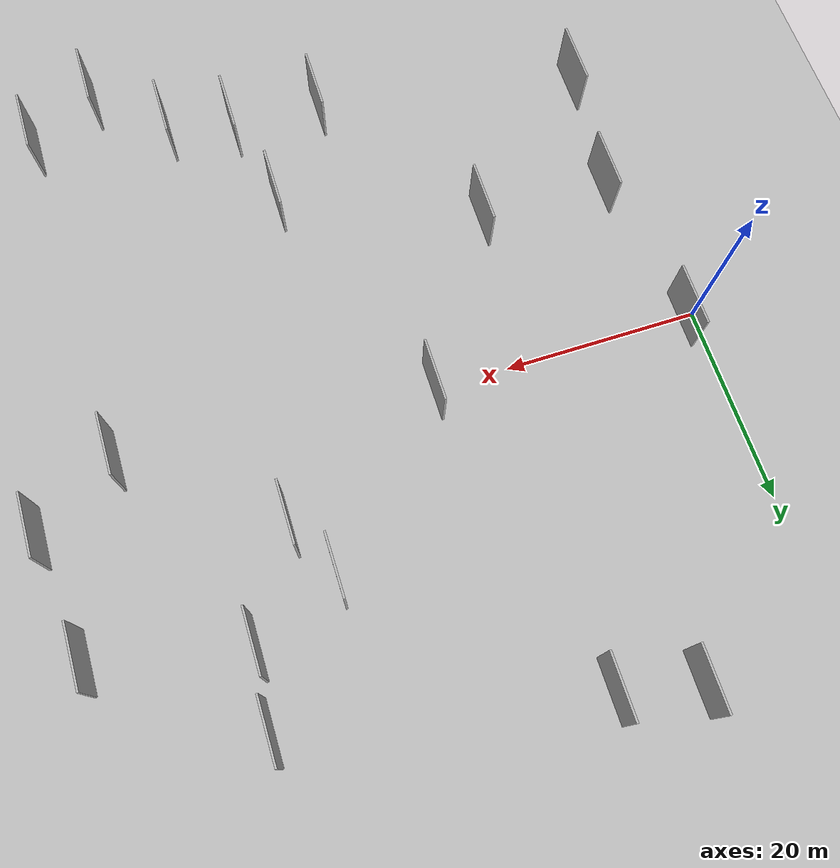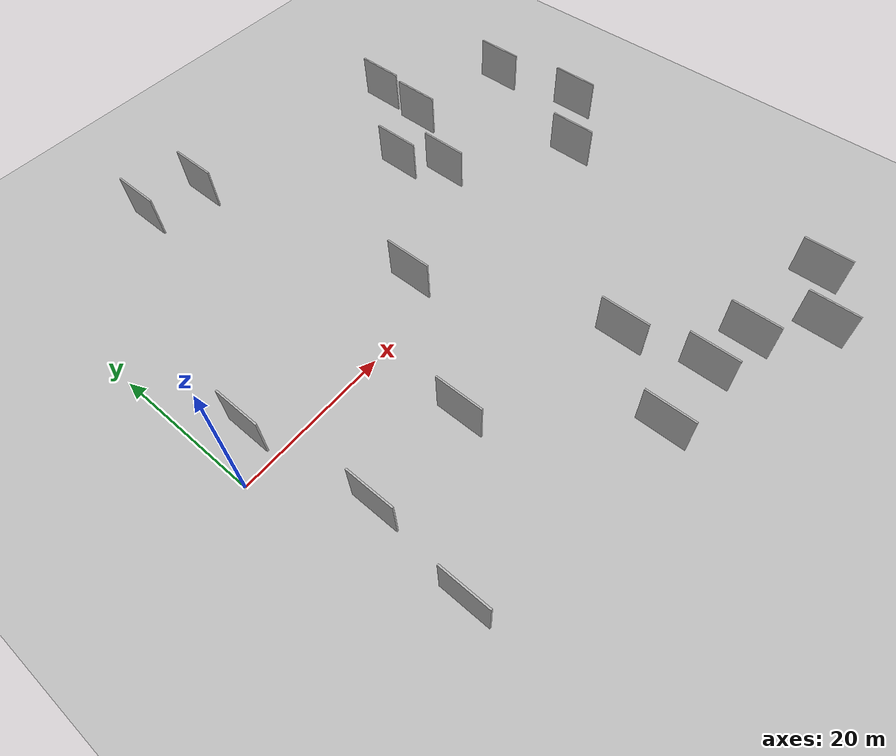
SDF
<?xml version="1.0" encoding="utf-8"?>

<sdf version="1.6">

   <world name="default">

      <gui fullscreen="0">

         <camera name="user_camera">

            <pose>-15 0 4.57585 0 0 0</pose>

            <view_controller>orbit</view_controller>

         </camera>

      </gui>

      <scene>

         <sky>

           <clouds>

             <speed>12</speed>

           </clouds>

         </sky>

         <ambient>0.4 0.4 0.4 1</ambient>

         <background>0.7 0.7 0.7 1</background>

         <shadows>1</shadows>

      </scene>

      <gravity>0 0 -9.8066</gravity>

      <magnetic_field>6e-06 2.3e-05 -4.2e-05</magnetic_field>

      <physics default="0" name="default_physics" type="ode">

         <ode>

            <solver>

               <type>quick</type>

               <iters>10</iters>

               <sor>1.0</sor>

               <use_dynamic_moi_rescaling>0</use_dynamic_moi_rescaling>

            </solver>

            <constraints>

               <cfm>0</cfm>

               <erp>0.2</erp>

               <contact_max_correcting_vel>100</contact_max_correcting_vel>

               <contact_surface_layer>0.001</contact_surface_layer>

            </constraints>

         </ode>

         <max_step_size>0.004</max_step_size>

         <real_time_factor>1</real_time_factor>

         <real_time_update_rate>250</real_time_update_rate>

      </physics>

      <light name="sun" type="directional">

         <cast_shadows>1</cast_shadows>

         <pose>0 0 10 0 0 0</pose>

         <diffuse>0.8 0.8 0.8 1</diffuse>

         <specular>0.2 0.2 0.2 1</specular>

         <attenuation>

            <range>1000</range>

            <constant>0.9</constant>

            <linear>0.01</linear>

            <quadratic>0.001</quadratic>

         </attenuation>

         <direction>-0.5 0.1 -0.9</direction>

      </light>

      <include>

         <name>ground_plane_1</name>

         <uri>model://HANNAS_ground_plane</uri>

         <pose>0 0 0  0 0 0</pose>

      </include>

      <include>

         <name>ground_plane_2</name>

         <uri>model://HANNAS_ground_plane</uri>

         <pose>100 0 0  0 0 0</pose>

      </include>

      <model name="HANNAS_wall_1">

         <static>1</static>

         <pose frame="">58.3960 -0.5911 5.0 0.000000 0.000000 1.570796</pose>

         <link name="link">

            <pose frame="">0 0 3.00 0 0 0</pose>

            <collision name="collision">

               <geometry>

                  <box>

                     <size>6.00 0.2 6.00</size>

                  </box>

               </geometry>

               <max_contacts>10</max_contacts>

               <surface>

                  <contact>

                     <ode/>

                  </contact>

                  <bounce/>

                  <friction>

                     <torsional>

                        <ode/>

                     </torsional>

                     <ode/>

                  </friction>

               </surface>

            </collision>

            <visual name="visual">

               <cast_shadows>0</cast_shadows>

               <geometry>

                  <box>

                     <size>6.00 0.2 6.00</size>

                  </box>

               </geometry>

               <material>

                  <script>

                     <uri>model://HANNAS_wall/materials/scripts</uri>

                     <uri>model://HANNAS_wall/materials/textures</uri>

                     <name>vrc/HANNAS_wall</name>

                  </script>

               </material>

            </visual>

            <self_collide>0</self_collide>

            <enable_wind>0</enable_wind>

            <kinematic>0</kinematic>

         </link>

      </model>

      <model name="HANNAS_wall_2">

         <static>1</static>

         <pose frame="">37.3410 -21.9034 5.0 0.000000 0.000000 1.570796</pose>

         <link name="link">

            <pose frame="">0 0 3.00 0 0 0</pose>

            <collision name="collision">

               <geometry>

                  <box>

                     <size>6.00 0.2 6.00</size>

                  </box>

               </geometry>

               <max_contacts>10</max_contacts>

               <surface>

                  <contact>

                     <ode/>

                  </contact>

                  <bounce/>

                  <friction>

                     <torsional>

                        <ode/>

                     </torsional>

                     <ode/>

                  </friction>

               </surface>

            </collision>

            <visual name="visual">

               <cast_shadows>0</cast_shadows>

               <geometry>

                  <box>

                     <size>6.00 0.2 6.00</size>

                  </box>

               </geometry>

               <material>

                  <script>

                     <uri>model://HANNAS_wall/materials/scripts</uri>

                     <uri>model://HANNAS_wall/materials/textures</uri>

                     <name>vrc/HANNAS_wall</name>

                  </script>

               </material>

            </visual>

            <self_collide>0</self_collide>

            <enable_wind>0</enable_wind>

            <kinematic>0</kinematic>

         </link>

      </model>

      <model name="HANNAS_wall_3">

         <static>1</static>

         <pose frame="">15.2201 33.7548 5.0 0.000000 0.000000 1.570796</pose>

         <link name="link">

            <pose frame="">0 0 3.00 0 0 0</pose>

            <collision name="collision">

               <geometry>

                  <box>

                     <size>6.00 0.2 6.00</size>

                  </box>

               </geometry>

               <max_contacts>10</max_contacts>

               <surface>

                  <contact>

                     <ode/>

                  </contact>

                  <bounce/>

                  <friction>

                     <torsional>

                        <ode/>

                     </torsional>

                     <ode/>

                  </friction>

               </surface>

            </collision>

            <visual name="visual">

               <cast_shadows>0</cast_shadows>

               <geometry>

                  <box>

                     <size>6.00 0.2 6.00</size>

                  </box>

               </geometry>

               <material>

                  <script>

                     <uri>model://HANNAS_wall/materials/scripts</uri>

                     <uri>model://HANNAS_wall/materials/textures</uri>

                     <name>vrc/HANNAS_wall</name>

                  </script>

               </material>

            </visual>

            <self_collide>0</self_collide>

            <enable_wind>0</enable_wind>

            <kinematic>0</kinematic>

         </link>

      </model>

      <model name="HANNAS_wall_4">

         <static>1</static>

         <pose frame="">66.3346 4.4779 5.0 0.000000 0.000000 1.570796</pose>

         <link name="link">

            <pose frame="">0 0 3.00 0 0 0</pose>

            <collision name="collision">

               <geometry>

                  <box>

                     <size>6.00 0.2 6.00</size>

                  </box>

               </geometry>

               <max_contacts>10</max_contacts>

               <surface>

                  <contact>

                     <ode/>

                  </contact>

                  <bounce/>

                  <friction>

                     <torsional>

                        <ode/>

                     </torsional>

                     <ode/>

                  </friction>

               </surface>

            </collision>

            <visual name="visual">

               <cast_shadows>0</cast_shadows>

               <geometry>

                  <box>

                     <size>6.00 0.2 6.00</size>

                  </box>

               </geometry>

               <material>

                  <script>

                     <uri>model://HANNAS_wall/materials/scripts</uri>

                     <uri>model://HANNAS_wall/materials/textures</uri>

                     <name>vrc/HANNAS_wall</name>

                  </script>

               </material>

            </visual>

            <self_collide>0</self_collide>

            <enable_wind>0</enable_wind>

            <kinematic>0</kinematic>

         </link>

      </model>

      <model name="HANNAS_wall_5">

         <static>1</static>

         <pose frame="">44.8449 10.0553 5.0 0.000000 0.000000 1.570796</pose>

         <link name="link">

            <pose frame="">0 0 3.00 0 0 0</pose>

            <collision name="collision">

               <geometry>

                  <box>

                     <size>6.00 0.2 6.00</size>

                  </box>

               </geometry>

               <max_contacts>10</max_contacts>

               <surface>

                  <contact>

                     <ode/>

                  </contact>

                  <bounce/>

                  <friction>

                     <torsional>

                        <ode/>

                     </torsional>

                     <ode/>

                  </friction>

               </surface>

            </collision>

            <visual name="visual">

               <cast_shadows>0</cast_shadows>

               <geometry>

                  <box>

                     <size>6.00 0.2 6.00</size>

                  </box>

               </geometry>

               <material>

                  <script>

                     <uri>model://HANNAS_wall/materials/scripts</uri>

                     <uri>model://HANNAS_wall/materials/textures</uri>

                     <name>vrc/HANNAS_wall</name>

                  </script>

               </material>

            </visual>

            <self_collide>0</self_collide>

            <enable_wind>0</enable_wind>

            <kinematic>0</kinematic>

         </link>

      </model>

      <model name="HANNAS_wall_6">

         <static>1</static>

         <pose frame="">22.5848 32.0861 5.0 0.000000 0.000000 1.570796</pose>

         <link name="link">

            <pose frame="">0 0 3.00 0 0 0</pose>

            <collision name="collision">

               <geometry>

                  <box>

                     <size>6.00 0.2 6.00</size>

                  </box>

               </geometry>

               <max_contacts>10</max_contacts>

               <surface>

                  <contact>

                     <ode/>

                  </contact>

                  <bounce/>

                  <friction>

                     <torsional>

                        <ode/>

                     </torsional>

                     <ode/>

                  </friction>

               </surface>

            </collision>

            <visual name="visual">

               <cast_shadows>0</cast_shadows>

               <geometry>

                  <box>

                     <size>6.00 0.2 6.00</size>

                  </box>

               </geometry>

               <material>

                  <script>

                     <uri>model://HANNAS_wall/materials/scripts</uri>

                     <uri>model://HANNAS_wall/materials/textures</uri>

                     <name>vrc/HANNAS_wall</name>

                  </script>

               </material>

            </visual>

            <self_collide>0</self_collide>

            <enable_wind>0</enable_wind>

            <kinematic>0</kinematic>

         </link>

      </model>

      <model name="HANNAS_wall_7">

         <static>1</static>

         <pose frame="">4.3440 -26.5365 5.0 0.000000 0.000000 1.570796</pose>

         <link name="link">

            <pose frame="">0 0 3.00 0 0 0</pose>

            <collision name="collision">

               <geometry>

                  <box>

                     <size>6.00 0.2 6.00</size>

                  </box>

               </geometry>

               <max_contacts>10</max_contacts>

               <surface>

                  <contact>

                     <ode/>

                  </contact>

                  <bounce/>

                  <friction>

                     <torsional>

                        <ode/>

                     </torsional>

                     <ode/>

                  </friction>

               </surface>

            </collision>

            <visual name="visual">

               <cast_shadows>0</cast_shadows>

               <geometry>

                  <box>

                     <size>6.00 0.2 6.00</size>

                  </box>

               </geometry>

               <material>

                  <script>

                     <uri>model://HANNAS_wall/materials/scripts</uri>

                     <uri>model://HANNAS_wall/materials/textures</uri>

                     <name>vrc/HANNAS_wall</name>

                  </script>

               </material>

            </visual>

            <self_collide>0</self_collide>

            <enable_wind>0</enable_wind>

            <kinematic>0</kinematic>

         </link>

      </model>

      <model name="HANNAS_wall_8">

         <static>1</static>

         <pose frame="">39.3613 -31.5756 5.0 0.000000 0.000000 1.570796</pose>

         <link name="link">

            <pose frame="">0 0 3.00 0 0 0</pose>

            <collision name="collision">

               <geometry>

                  <box>

                     <size>6.00 0.2 6.00</size>

                  </box>

               </geometry>

               <max_contacts>10</max_contacts>

               <surface>

                  <contact>

                     <ode/>

                  </contact>

                  <bounce/>

                  <friction>

                     <torsional>

                        <ode/>

                     </torsional>

                     <ode/>

                  </friction>

               </surface>

            </collision>

            <visual name="visual">

               <cast_shadows>0</cast_shadows>

               <geometry>

                  <box>

                     <size>6.00 0.2 6.00</size>

                  </box>

               </geometry>

               <material>

                  <script>

                     <uri>model://HANNAS_wall/materials/scripts</uri>

                     <uri>model://HANNAS_wall/materials/textures</uri>

                     <name>vrc/HANNAS_wall</name>

                  </script>

               </material>

            </visual>

            <self_collide>0</self_collide>

            <enable_wind>0</enable_wind>

            <kinematic>0</kinematic>

         </link>

      </model>

      <model name="HANNAS_wall_9">

         <static>1</static>

         <pose frame="">5.6189 -14.1888 5.0 0.000000 0.000000 1.570796</pose>

         <link name="link">

            <pose frame="">0 0 3.00 0 0 0</pose>

            <collision name="collision">

               <geometry>

                  <box>

                     <size>6.00 0.2 6.00</size>

                  </box>

               </geometry>

               <max_contacts>10</max_contacts>

               <surface>

                  <contact>

                     <ode/>

                  </contact>

                  <bounce/>

                  <friction>

                     <torsional>

                        <ode/>

                     </torsional>

                     <ode/>

                  </friction>

               </surface>

            </collision>

            <visual name="visual">

               <cast_shadows>0</cast_shadows>

               <geometry>

                  <box>

                     <size>6.00 0.2 6.00</size>

                  </box>

               </geometry>

               <material>

                  <script>

                     <uri>model://HANNAS_wall/materials/scripts</uri>

                     <uri>model://HANNAS_wall/materials/textures</uri>

                     <name>vrc/HANNAS_wall</name>

                  </script>

               </material>

            </visual>

            <self_collide>0</self_collide>

            <enable_wind>0</enable_wind>

            <kinematic>0</kinematic>

         </link>

      </model>

      <model name="HANNAS_wall_10">

         <static>1</static>

         <pose frame="">64.6992 16.3798 5.0 0.000000 0.000000 1.570796</pose>

         <link name="link">

            <pose frame="">0 0 3.00 0 0 0</pose>

            <collision name="collision">

               <geometry>

                  <box>

                     <size>6.00 0.2 6.00</size>

                  </box>

               </geometry>

               <max_contacts>10</max_contacts>

               <surface>

                  <contact>

                     <ode/>

                  </contact>

                  <bounce/>

                  <friction>

                     <torsional>

                        <ode/>

                     </torsional>

                     <ode/>

                  </friction>

               </surface>

            </collision>

            <visual name="visual">

               <cast_shadows>0</cast_shadows>

               <geometry>

                  <box>

                     <size>6.00 0.2 6.00</size>

                  </box>

               </geometry>

               <material>

                  <script>

                     <uri>model://HANNAS_wall/materials/scripts</uri>

                     <uri>model://HANNAS_wall/materials/textures</uri>

                     <name>vrc/HANNAS_wall</name>

                  </script>

               </material>

            </visual>

            <self_collide>0</self_collide>

            <enable_wind>0</enable_wind>

            <kinematic>0</kinematic>

         </link>

      </model>

      <model name="HANNAS_wall_11">

         <static>1</static>

         <pose frame="">45.7994 -33.0895 5.0 0.000000 0.000000 1.570796</pose>

         <link name="link">

            <pose frame="">0 0 3.00 0 0 0</pose>

            <collision name="collision">

               <geometry>

                  <box>

                     <size>6.00 0.2 6.00</size>

                  </box>

               </geometry>

               <max_contacts>10</max_contacts>

               <surface>

                  <contact>

                     <ode/>

                  </contact>

                  <bounce/>

                  <friction>

                     <torsional>

                        <ode/>

                     </torsional>

                     <ode/>

                  </friction>

               </surface>

            </collision>

            <visual name="visual">

               <cast_shadows>0</cast_shadows>

               <geometry>

                  <box>

                     <size>6.00 0.2 6.00</size>

                  </box>

               </geometry>

               <material>

                  <script>

                     <uri>model://HANNAS_wall/materials/scripts</uri>

                     <uri>model://HANNAS_wall/materials/textures</uri>

                     <name>vrc/HANNAS_wall</name>

                  </script>

               </material>

            </visual>

            <self_collide>0</self_collide>

            <enable_wind>0</enable_wind>

            <kinematic>0</kinematic>

         </link>

      </model>

      <model name="HANNAS_wall_12">

         <static>1</static>

         <pose frame="">18.4371 -14.3033 5.0 0.000000 0.000000 1.570796</pose>

         <link name="link">

            <pose frame="">0 0 3.00 0 0 0</pose>

            <collision name="collision">

               <geometry>

                  <box>

                     <size>6.00 0.2 6.00</size>

                  </box>

               </geometry>

               <max_contacts>10</max_contacts>

               <surface>

                  <contact>

                     <ode/>

                  </contact>

                  <bounce/>

                  <friction>

                     <torsional>

                        <ode/>

                     </torsional>

                     <ode/>

                  </friction>

               </surface>

            </collision>

            <visual name="visual">

               <cast_shadows>0</cast_shadows>

               <geometry>

                  <box>

                     <size>6.00 0.2 6.00</size>

                  </box>

               </geometry>

               <material>

                  <script>

                     <uri>model://HANNAS_wall/materials/scripts</uri>

                     <uri>model://HANNAS_wall/materials/textures</uri>

                     <name>vrc/HANNAS_wall</name>

                  </script>

               </material>

            </visual>

            <self_collide>0</self_collide>

            <enable_wind>0</enable_wind>

            <kinematic>0</kinematic>

         </link>

      </model>

      <model name="HANNAS_wall_13">

         <static>1</static>

         <pose frame="">30.4287 -31.4757 5.0 0.000000 0.000000 1.570796</pose>

         <link name="link">

            <pose frame="">0 0 3.00 0 0 0</pose>

            <collision name="collision">

               <geometry>

                  <box>

                     <size>6.00 0.2 6.00</size>

                  </box>

               </geometry>

               <max_contacts>10</max_contacts>

               <surface>

                  <contact>

                     <ode/>

                  </contact>

                  <bounce/>

                  <friction>

                     <torsional>

                        <ode/>

                     </torsional>

                     <ode/>

                  </friction>

               </surface>

            </collision>

            <visual name="visual">

               <cast_shadows>0</cast_shadows>

               <geometry>

                  <box>

                     <size>6.00 0.2 6.00</size>

                  </box>

               </geometry>

               <material>

                  <script>

                     <uri>model://HANNAS_wall/materials/scripts</uri>

                     <uri>model://HANNAS_wall/materials/textures</uri>

                     <name>vrc/HANNAS_wall</name>

                  </script>

               </material>

            </visual>

            <self_collide>0</self_collide>

            <enable_wind>0</enable_wind>

            <kinematic>0</kinematic>

         </link>

      </model>

      <model name="HANNAS_wall_14">

         <static>1</static>

         <pose frame="">50.9836 26.7225 5.0 0.000000 0.000000 1.570796</pose>

         <link name="link">

            <pose frame="">0 0 3.00 0 0 0</pose>

            <collision name="collision">

               <geometry>

                  <box>

                     <size>6.00 0.2 6.00</size>

                  </box>

               </geometry>

               <max_contacts>10</max_contacts>

               <surface>

                  <contact>

                     <ode/>

                  </contact>

                  <bounce/>

                  <friction>

                     <torsional>

                        <ode/>

                     </torsional>

                     <ode/>

                  </friction>

               </surface>

            </collision>

            <visual name="visual">

               <cast_shadows>0</cast_shadows>

               <geometry>

                  <box>

                     <size>6.00 0.2 6.00</size>

                  </box>

               </geometry>

               <material>

                  <script>

                     <uri>model://HANNAS_wall/materials/scripts</uri>

                     <uri>model://HANNAS_wall/materials/textures</uri>

                     <name>vrc/HANNAS_wall</name>

                  </script>

               </material>

            </visual>

            <self_collide>0</self_collide>

            <enable_wind>0</enable_wind>

            <kinematic>0</kinematic>

         </link>

      </model>

      <model name="HANNAS_wall_15">

         <static>1</static>

         <pose frame="">50.3394 19.5744 5.0 0.000000 0.000000 1.570796</pose>

         <link name="link">

            <pose frame="">0 0 3.00 0 0 0</pose>

            <collision name="collision">

               <geometry>

                  <box>

                     <size>6.00 0.2 6.00</size>

                  </box>

               </geometry>

               <max_contacts>10</max_contacts>

               <surface>

                  <contact>

                     <ode/>

                  </contact>

                  <bounce/>

                  <friction>

                     <torsional>

                        <ode/>

                     </torsional>

                     <ode/>

                  </friction>

               </surface>

            </collision>

            <visual name="visual">

               <cast_shadows>0</cast_shadows>

               <geometry>

                  <box>

                     <size>6.00 0.2 6.00</size>

                  </box>

               </geometry>

               <material>

                  <script>

                     <uri>model://HANNAS_wall/materials/scripts</uri>

                     <uri>model://HANNAS_wall/materials/textures</uri>

                     <name>vrc/HANNAS_wall</name>

                  </script>

               </material>

            </visual>

            <self_collide>0</self_collide>

            <enable_wind>0</enable_wind>

            <kinematic>0</kinematic>

         </link>

      </model>

      <model name="HANNAS_wall_16">

         <static>1</static>

         <pose frame="">52.3462 -39.0106 5.0 0.000000 0.000000 1.570796</pose>

         <link name="link">

            <pose frame="">0 0 3.00 0 0 0</pose>

            <collision name="collision">

               <geometry>

                  <box>

                     <size>6.00 0.2 6.00</size>

                  </box>

               </geometry>

               <max_contacts>10</max_contacts>

               <surface>

                  <contact>

                     <ode/>

                  </contact>

                  <bounce/>

                  <friction>

                     <torsional>

                        <ode/>

                     </torsional>

                     <ode/>

                  </friction>

               </surface>

            </collision>

            <visual name="visual">

               <cast_shadows>0</cast_shadows>

               <geometry>

                  <box>

                     <size>6.00 0.2 6.00</size>

                  </box>

               </geometry>

               <material>

                  <script>

                     <uri>model://HANNAS_wall/materials/scripts</uri>

                     <uri>model://HANNAS_wall/materials/textures</uri>

                     <name>vrc/HANNAS_wall</name>

                  </script>

               </material>

            </visual>

            <self_collide>0</self_collide>

            <enable_wind>0</enable_wind>

            <kinematic>0</kinematic>

         </link>

      </model>

      <model name="HANNAS_wall_17">

         <static>1</static>

         <pose frame="">42.1041 15.6597 5.0 0.000000 0.000000 1.570796</pose>

         <link name="link">

            <pose frame="">0 0 3.00 0 0 0</pose>

            <collision name="collision">

               <geometry>

                  <box>

                     <size>6.00 0.2 6.00</size>

                  </box>

               </geometry>

               <max_contacts>10</max_contacts>

               <surface>

                  <contact>

                     <ode/>

                  </contact>

                  <bounce/>

                  <friction>

                     <torsional>

                        <ode/>

                     </torsional>

                     <ode/>

                  </friction>

               </surface>

            </collision>

            <visual name="visual">

               <cast_shadows>0</cast_shadows>

               <geometry>

                  <box>

                     <size>6.00 0.2 6.00</size>

                  </box>

               </geometry>

               <material>

                  <script>

                     <uri>model://HANNAS_wall/materials/scripts</uri>

                     <uri>model://HANNAS_wall/materials/textures</uri>

                     <name>vrc/HANNAS_wall</name>

                  </script>

               </material>

            </visual>

            <self_collide>0</self_collide>

            <enable_wind>0</enable_wind>

            <kinematic>0</kinematic>

         </link>

      </model>

      <model name="HANNAS_wall_18">

         <static>1</static>

         <pose frame="">3.4024 1.7170 5.0 0.000000 0.000000 1.570796</pose>

         <link name="link">

            <pose frame="">0 0 3.00 0 0 0</pose>

            <collision name="collision">

               <geometry>

                  <box>

                     <size>6.00 0.2 6.00</size>

                  </box>

               </geometry>

               <max_contacts>10</max_contacts>

               <surface>

                  <contact>

                     <ode/>

                  </contact>

                  <bounce/>

                  <friction>

                     <torsional>

                        <ode/>

                     </torsional>

                     <ode/>

                  </friction>

               </surface>

            </collision>

            <visual name="visual">

               <cast_shadows>0</cast_shadows>

               <geometry>

                  <box>

                     <size>6.00 0.2 6.00</size>

                  </box>

               </geometry>

               <material>

                  <script>

                     <uri>model://HANNAS_wall/materials/scripts</uri>

                     <uri>model://HANNAS_wall/materials/textures</uri>

                     <name>vrc/HANNAS_wall</name>

                  </script>

               </material>

            </visual>

            <self_collide>0</self_collide>

            <enable_wind>0</enable_wind>

            <kinematic>0</kinematic>

         </link>

      </model>

      <model name="HANNAS_wall_19">

         <static>1</static>

         <pose frame="">59.0998 -35.3898 5.0 0.000000 0.000000 1.570796</pose>

         <link name="link">

            <pose frame="">0 0 3.00 0 0 0</pose>

            <collision name="collision">

               <geometry>

                  <box>

                     <size>6.00 0.2 6.00</size>

                  </box>

               </geometry>

               <max_contacts>10</max_contacts>

               <surface>

                  <contact>

                     <ode/>

                  </contact>

                  <bounce/>

                  <friction>

                     <torsional>

                        <ode/>

                     </torsional>

                     <ode/>

                  </friction>

               </surface>

            </collision>

            <visual name="visual">

               <cast_shadows>0</cast_shadows>

               <geometry>

                  <box>

                     <size>6.00 0.2 6.00</size>

                  </box>

               </geometry>

               <material>

                  <script>

                     <uri>model://HANNAS_wall/materials/scripts</uri>

                     <uri>model://HANNAS_wall/materials/textures</uri>

                     <name>vrc/HANNAS_wall</name>

                  </script>

               </material>

            </visual>

            <self_collide>0</self_collide>

            <enable_wind>0</enable_wind>

            <kinematic>0</kinematic>

         </link>

      </model>

      <model name="HANNAS_wall_20">

         <static>1</static>

         <pose frame="">28.5642 1.5851 5.0 0.000000 0.000000 1.570796</pose>

         <link name="link">

            <pose frame="">0 0 3.00 0 0 0</pose>

            <collision name="collision">

               <geometry>

                  <box>

                     <size>6.00 0.2 6.00</size>

                  </box>

               </geometry>

               <max_contacts>10</max_contacts>

               <surface>

                  <contact>

                     <ode/>

                  </contact>

                  <bounce/>

                  <friction>

                     <torsional>

                        <ode/>

                     </torsional>

                     <ode/>

                  </friction>

               </surface>

            </collision>

            <visual name="visual">

               <cast_shadows>0</cast_shadows>

               <geometry>

                  <box>

                     <size>6.00 0.2 6.00</size>

                  </box>

               </geometry>

               <material>

                  <script>

                     <uri>model://HANNAS_wall/materials/scripts</uri>

                     <uri>model://HANNAS_wall/materials/textures</uri>

                     <name>vrc/HANNAS_wall</name>

                  </script>

               </material>

            </visual>

            <self_collide>0</self_collide>

            <enable_wind>0</enable_wind>

            <kinematic>0</kinematic>

         </link>

      </model>

   </world>

</sdf>

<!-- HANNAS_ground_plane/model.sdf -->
<sdf version="1.4">
<model name="HANNAS_ground_plane">
  <static>true</static>
    <link name="link">
      <collision name="collision">
        <geometry>
          <plane>
            <normal>0 0 1</normal>
            <size>1000 1000</size>
          </plane>
        </geometry>
        <surface>
          <friction>
            <ode>
              <mu>100</mu>
              <mu2>50</mu2>
            </ode>
          </friction>
        </surface>
      </collision>
      <visual name="visual">
        <cast_shadows>false</cast_shadows>
        <geometry>
          <plane>
            <normal>0 0 1</normal>
            <size>1000 1000</size>
          </plane>
        </geometry>
        <material>
          <script>
            <uri>model://HANNAS_ground_plane/materials/scripts/HANNAS_ground_plane.material</uri>
	    <uri>model://HANNAS_ground_plane/materials/textures</uri>
            <name>HANNASGroundPlane/Image</name>
          </script>
        </material>
      </visual>
    </link>
  </model>
</sdf>
